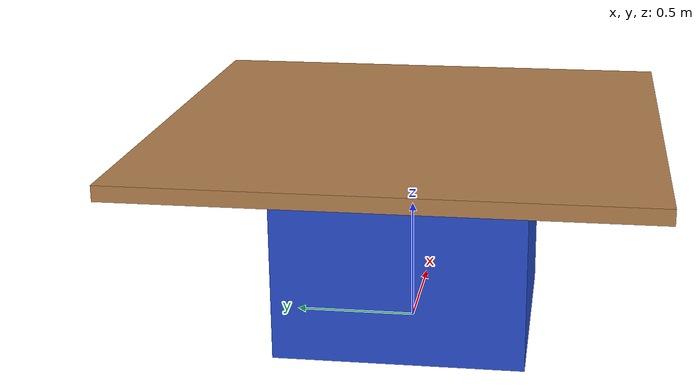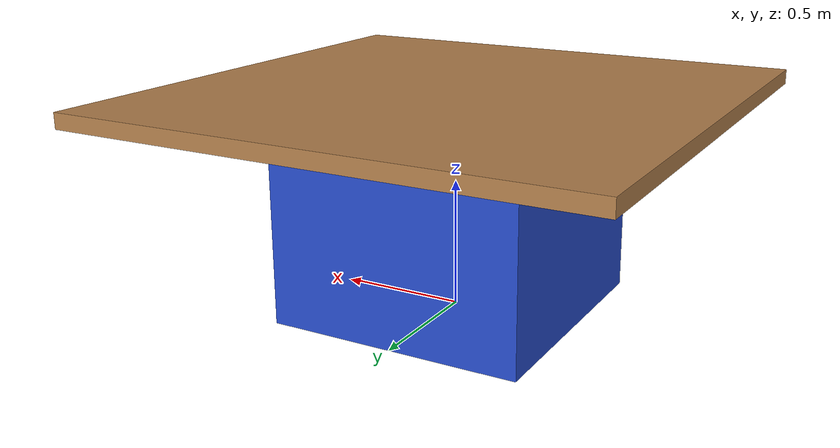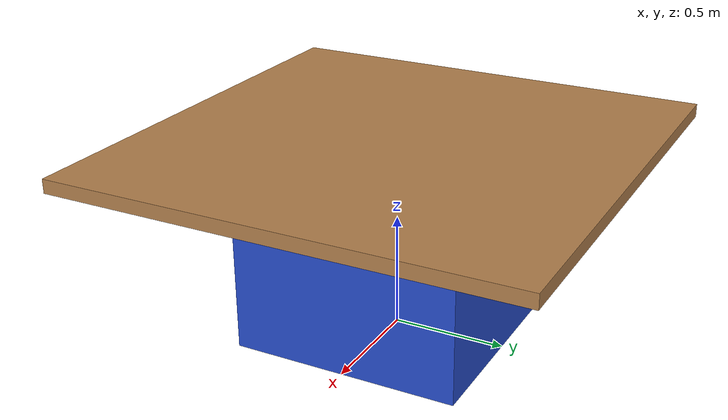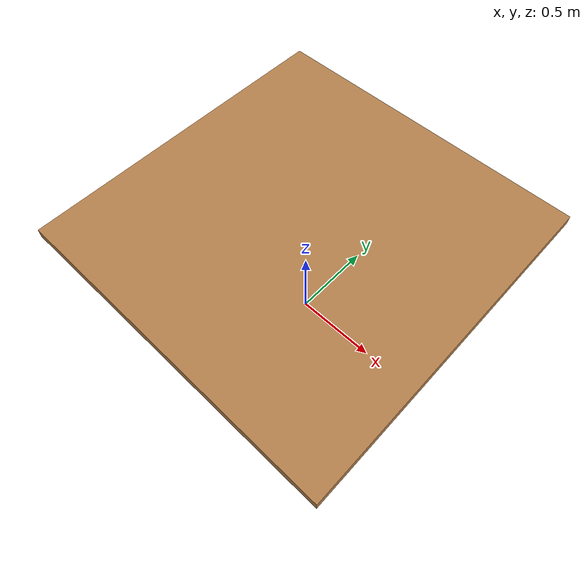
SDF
<?xml version="1.0" ?>
<sdf version="1.6">

<!--
  Information:
  - list of materials: http://wiki.ros.org/simulator_gazebo/Tutorials/ListOfMaterials
-->
  <model name="workdesk">
    <!-- Box -->
    <link name="link">
      <inertial>
        <pose> 0 0 0.4  0 0 0 </pose>
        <mass>60.0</mass>
        <inertia>
          <ixx>2.0</ixx>
          <iyy>2.0</iyy>
          <izz>5.0</izz>
          <ixy>0</ixy>
          <ixz>0</ixz>
          <iyz>0</iyz>
        </inertia>
      </inertial>
      <visual name="visual">
        <pose> 0 0 0.4  0 0 0 </pose>
        <geometry>
          <box>
            <size>1.0 1.0 0.8</size>
          </box>
        </geometry>
        <material>
          <script>
            <uri>file://media/materials/scripts/gazebo.material</uri>
            <name>Gazebo/Blue</name>
          </script>
        </material>
      </visual>
      <collision name="collision">
        <pose> 0 0 0.4  0 0 0 </pose>
        <geometry>
          <box>
            <size>1.0 1.0 0.8</size>
          </box>
        </geometry>
        <mu>1.0</mu>
        <mu2>1.0</mu2>
        <kp>10000000.0</kp>
        <kd>1.0</kd>
        <min_depth>0.001</min_depth>
        <max_vel>0.1</max_vel>
      </collision>
    </link>

    <!-- Wodden plate -->
    <link name="plate">
      <inertial>
        <pose> 0 0 0.83 0 0 0 </pose>
        <mass>5.0</mass>
        <inertia>
          <ixx>0.0</ixx>
          <iyy>0.0</iyy>
          <izz>0.0</izz>
          <ixy>0</ixy>
          <ixz>0</ixz>
          <iyz>0</iyz>
        </inertia>
      </inertial>
      <visual name="visual">
        <pose> 0 0 0.83  0 0 0 </pose>
        <geometry>
          <box>
            <size>2.0 2.0 0.06</size>
          </box>
        </geometry>
        <material>
          <script>
            <uri>file://media/materials/scripts/gazebo.material</uri>
            <name>Gazebo/Wood</name>
          </script>
        </material>
      </visual>
      <collision name="collision">
        <pose> 0 0 0.83  0 0 0 </pose>
        <geometry>
          <box>
            <size>2.0 2.0 0.06</size>
          </box>
        </geometry>
        <mu>1.0</mu>
        <mu2>1.0</mu2>
        <kp>10000000.0</kp>
        <kd>1.0</kd>
        <min_depth>0.001</min_depth>
        <max_vel>0.1</max_vel>
      </collision>
    </link>

    <joint name="plate_joint" type="fixed"> <parent>link</parent> <child>plate</child> </joint>

  </model>
</sdf>
